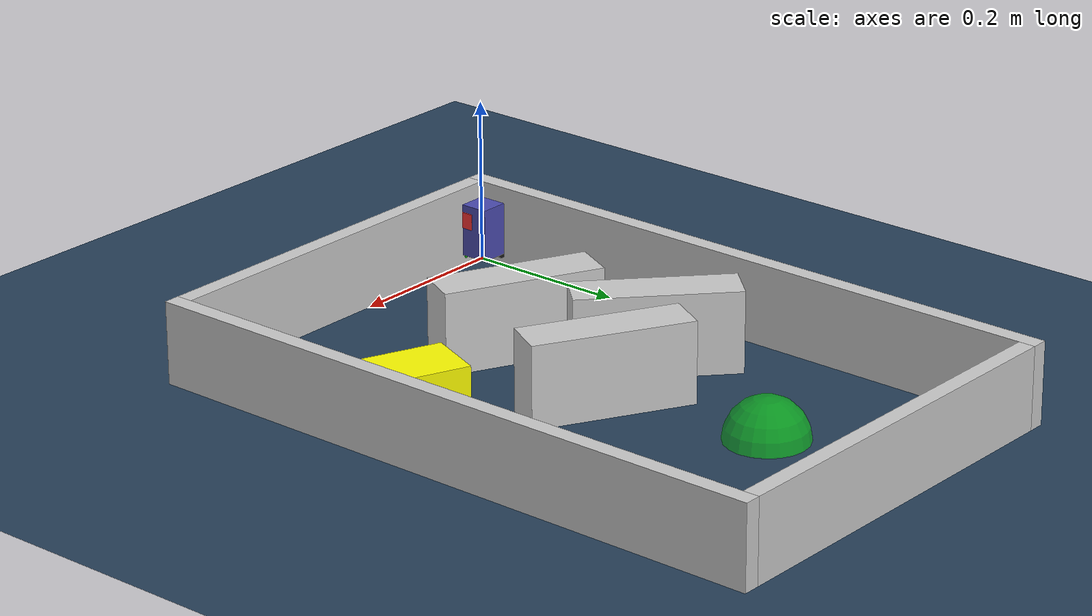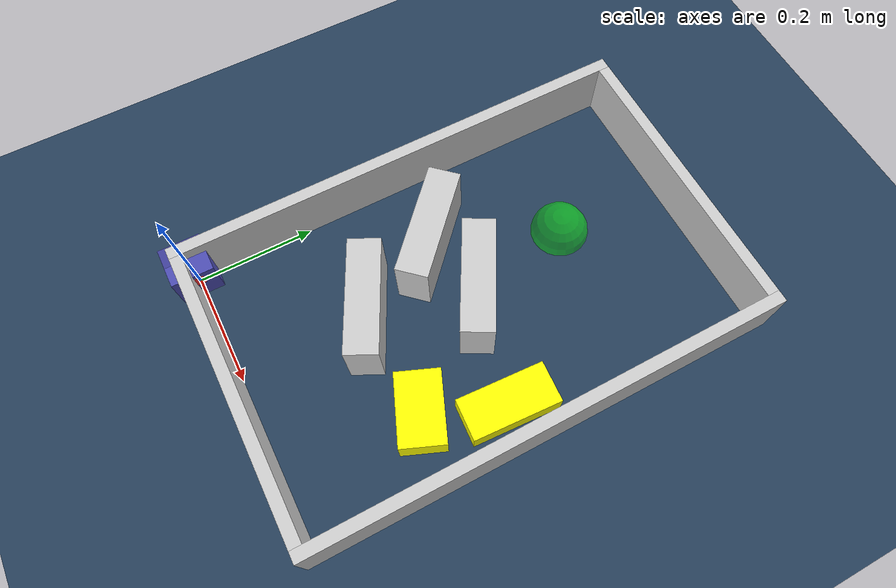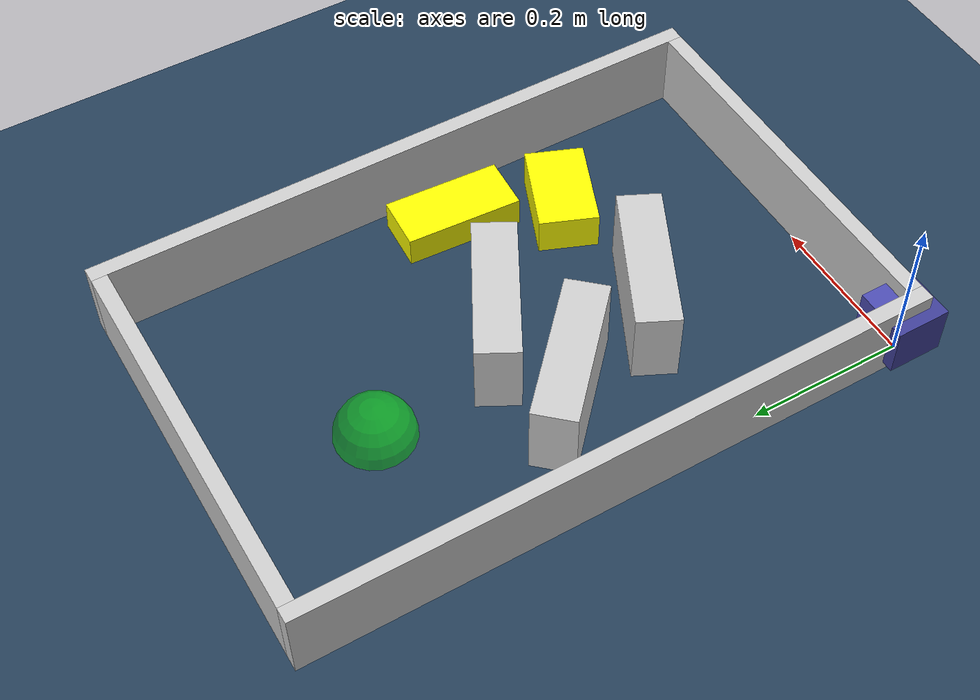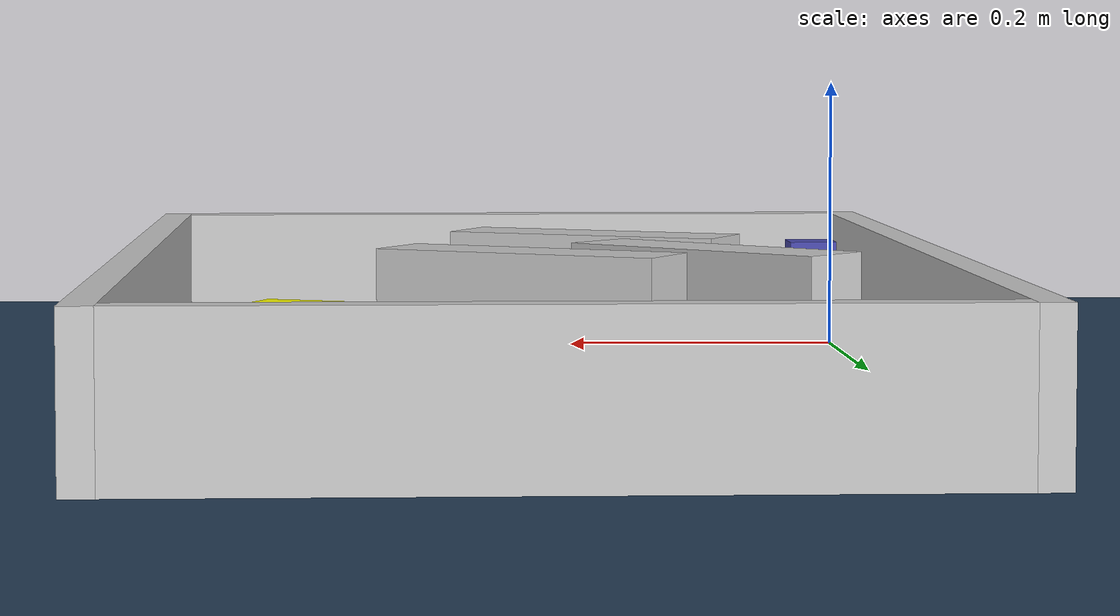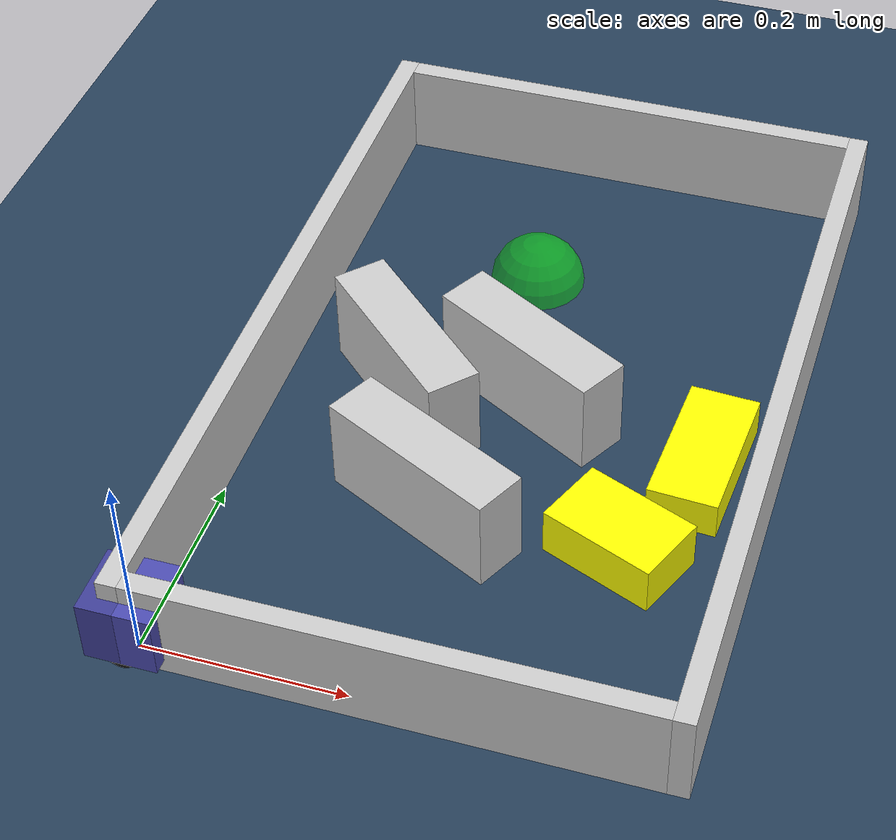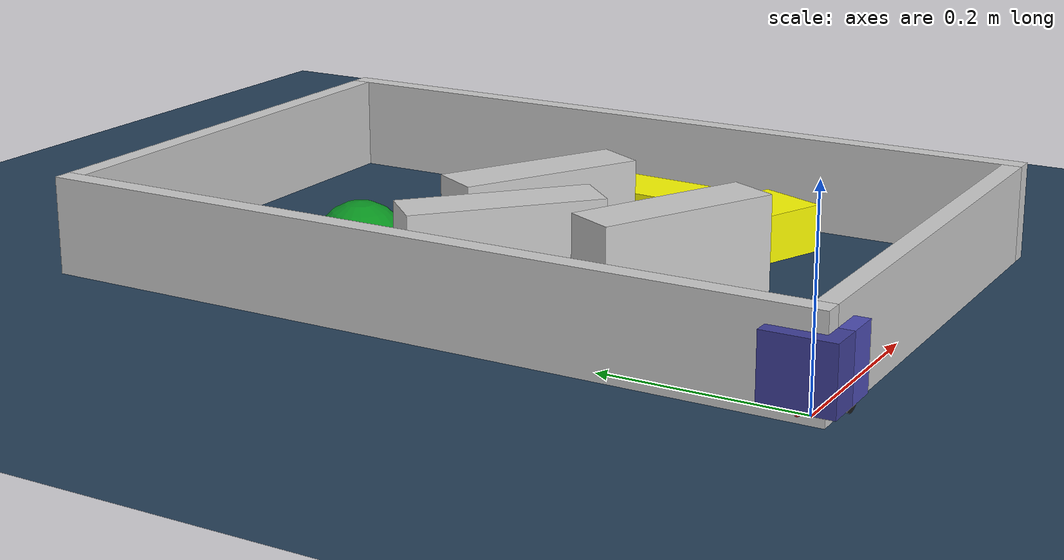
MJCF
<?xml version="1.0" ?>
<mujoco model="generated_environment">
  <option cone="elliptic" integrator="implicitfast" iterations="100" timestep="0.002"/>
  <default>
    <geom density="1"/>
  </default>
  <asset>
    <texture builtin="gradient" height="3072" rgb1="0.3 0.5 0.7" rgb2="0 0 0" type="skybox" width="512"/>
    <texture builtin="checker" height="300" mark="edge" markrgb="0.8 0.8 0.8" name="groundplane" rgb1="0.2 0.3 0.4" rgb2="0.1 0.2 0.3" type="2d" width="300"/>
    <material name="groundplane" reflectance="0.2" texrepeat="5 5" texture="groundplane" texuniform="true"/>
    <material name="robot" rgba="1.0 1.0 0.0 1.0"/>
  </asset>
  <include file="/home/dhruv/projects_dhruv/namo/namo_cpp/test_xml/little-car-modeling-package/assets/mjcf/little_car.xml"/>
  <worldbody>
    <light dir="0 0 -1" directional="true" pos="0 0 1.5"/>
    <geom condim="4" friction="0.5 0.005 0.001" material="groundplane" name="floor" size="0 0 0.05" type="plane"/>
    <body name="walls">
      <geom name="wall_1" condim="4" pos="-0.01 0.3875 0.05" friction="1 0.005 0.0001" rgba="0.800000011920929 0.800000011920929 0.800000011920929 1.0" size="0.01 0.40750000000000003 0.05" type="box"/>
      <geom name="wall_2" condim="4" pos="0.5 0.3875 0.05" friction="1 0.005 0.0001" rgba="0.800000011920929 0.800000011920929 0.800000011920929 1.0" size="0.01 0.40750000000000003 0.05" type="box"/>
      <geom name="wall_3" condim="4" pos="0.245 -0.01 0.05" friction="1 0.005 0.0001" rgba="0.800000011920929 0.800000011920929 0.800000011920929 1.0" size="0.245 0.01 0.05" type="box"/>
      <geom name="wall_4" condim="4" pos="0.245 0.785 0.05" friction="1 0.005 0.0001" rgba="0.800000011920929 0.800000011920929 0.800000011920929 1.0" size="0.245 0.01 0.05" type="box"/>
    </body>
    <body name="obstacle_1_movable">
      <geom name="obstacle_1_movable" condim="4" pos="0.4347316699156124 0.3528638062263707 0.02" quat="0.029600970816817247 0 0 0.9995617952516502" friction="1 0.005 0.0001" rgba="1 1 0 1" size="0.035 0.075 0.02" type="box" mass="0.1"/>
      <joint type="free"/>
    </body>
    <body name="obstacle_2_movable">
      <geom name="obstacle_2_movable" condim="4" pos="0.38363610268670584 0.2265911617654438 0.025" quat="0.8299396357988809 0 0 0.5578532073314816" friction="1 0.005 0.0001" rgba="1 1 0 1" size="0.0375 0.06 0.025" type="box" mass="0.1"/>
      <joint type="free"/>
    </body>
    <body name="wall_5">
      <geom name="wall_5" condim="4" pos="0.19647513824691246 0.22395937212826467 0.05" quat="-0.5274835854555483 0 0 0.8495652223784583" friction="1 0.005 0.0001" rgba="0.800000011920929 0.800000011920929 0.800000011920929 1.0" size="0.0275 0.0975 0.05" type="box"/>
    </body>
    <body name="wall_6">
      <geom name="wall_6" condim="4" pos="0.24835343540813568 0.3990401546147608 0.05" quat="0.8610482887608252 0 0 0.5085231994924662" friction="1 0.005 0.0001" rgba="0.800000011920929 0.800000011920929 0.800000011920929 1.0" size="0.0275 0.0975 0.05" type="box"/>
    </body>
    <body name="wall_7">
      <geom name="wall_7" condim="4" pos="0.12781608418819318 0.37228683324139583 0.05" quat="-0.39944948950046455 0 0 0.9167552046963345" friction="1 0.005 0.0001" rgba="0.800000011920929 0.800000011920929 0.800000011920929 1.0" size="0.0275 0.0975 0.05" type="box"/>
    </body>
    <site name="goal" type="sphere" size="0.05 0.05 0.05" rgba="0 1 0 0.5" pos="0.200793 0.586272 0.0"/>
  </worldbody>
</mujoco>

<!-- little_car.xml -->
<mujoco model="little_car">
  <compiler angle="radian" autolimits="true"/>
  <default>
    <geom condim="4"/>
    <joint damping="0.01" armature="0.0001"/>
  </default>
  <worldbody>
    <body name="car" pos="0 0 0.010000">
      <freejoint name="car_freejoint"/>
      <inertial pos="0.000000 0 0.037500" mass="0.350000"
                diaginertia="0.000266 0.000266 0.000286"/>
      <geom name="front_chassis_collision" type="box" pos="0.017500 0 0.037500"
            size="0.017500 0.035000 0.032500"
            rgba="0.3 0.3 0.7 1"/>
      <geom name="rear_chassis_collision" type="box" pos="-0.017500 0 0.037500"
            size="0.017500 0.035000 0.032500"
            rgba="0.25 0.25 0.6 1"/>
      <geom name="front_marker" type="box" pos="0.034000 0 0.050500"
            size="0.002000 0.015000 0.010000"
            rgba="1.0 0.2 0.2 1" contype="0" conaffinity="0"/>

      <body name="rear_support_body" pos="-0.030000 0.000000 0.002500">
        <joint name="rear_caster_joint" type="ball" damping="0.0001"/>
        <inertial pos="0 0 0" mass="0.025000"
                  diaginertia="0.000001 0.000001 0.000001"/>
        <geom name="rear_support" type="sphere"
              pos="0 0 0"
              size="0.002500"
              friction="0.000000 0.000000 0.000000"
              rgba="0.7 0.1 0.1 1"/>
      </body>

      <body name="front_support_body" pos="0.030000 0.000000 0.002500">
        <joint name="front_caster_joint" type="ball" damping="0.0001"/>
        <inertial pos="0 0 0" mass="0.025000"
                  diaginertia="0.000001 0.000001 0.000001"/>
        <geom name="front_support" type="sphere"
              pos="0 0 0"
              size="0.002500"
              friction="0.000000 0.000000 0.000000"
              rgba="0.1 0.7 0.1 1"/>
      </body>

      <body name="left_wheel" pos="0.000000 0.034000 0.015000">
        <inertial pos="0 0 0" mass="0.050000"
                  diaginertia="0.000003 0.000006 0.000003"/>
        <joint name="left_wheel_joint" type="hinge" axis="0 1 0"/>
        <geom name="left_wheel_collision" type="cylinder" size="0.015000 0.000500"
              euler="1.57079632679 0 0" rgba="0.1 0.1 0.1 1"/>
      </body>

      <body name="right_wheel" pos="0.000000 -0.034000 0.015000">
        <inertial pos="0 0 0" mass="0.050000"
                  diaginertia="0.000003 0.000006 0.000003"/>
        <joint name="right_wheel_joint" type="hinge" axis="0 1 0"/>
        <geom name="right_wheel_collision" type="cylinder" size="0.015000 0.000500"
              euler="1.57079632679 0 0" rgba="0.1 0.1 0.1 1"/>
      </body>
    </body>
  </worldbody>
  <contact>
    <exclude body1="car" body2="left_wheel"/>
    <exclude body1="car" body2="right_wheel"/>
  </contact>
  <actuator>
    <velocity name="left_wheel_drive" joint="left_wheel_joint"
              ctrlrange="-25.000000 25.000000"
              kv="0.750000" forcerange="-0.500000 0.500000"/>
    <velocity name="right_wheel_drive" joint="right_wheel_joint"
              ctrlrange="-25.000000 25.000000"
              kv="0.750000" forcerange="-0.500000 0.500000"/>
  </actuator>
</mujoco>
